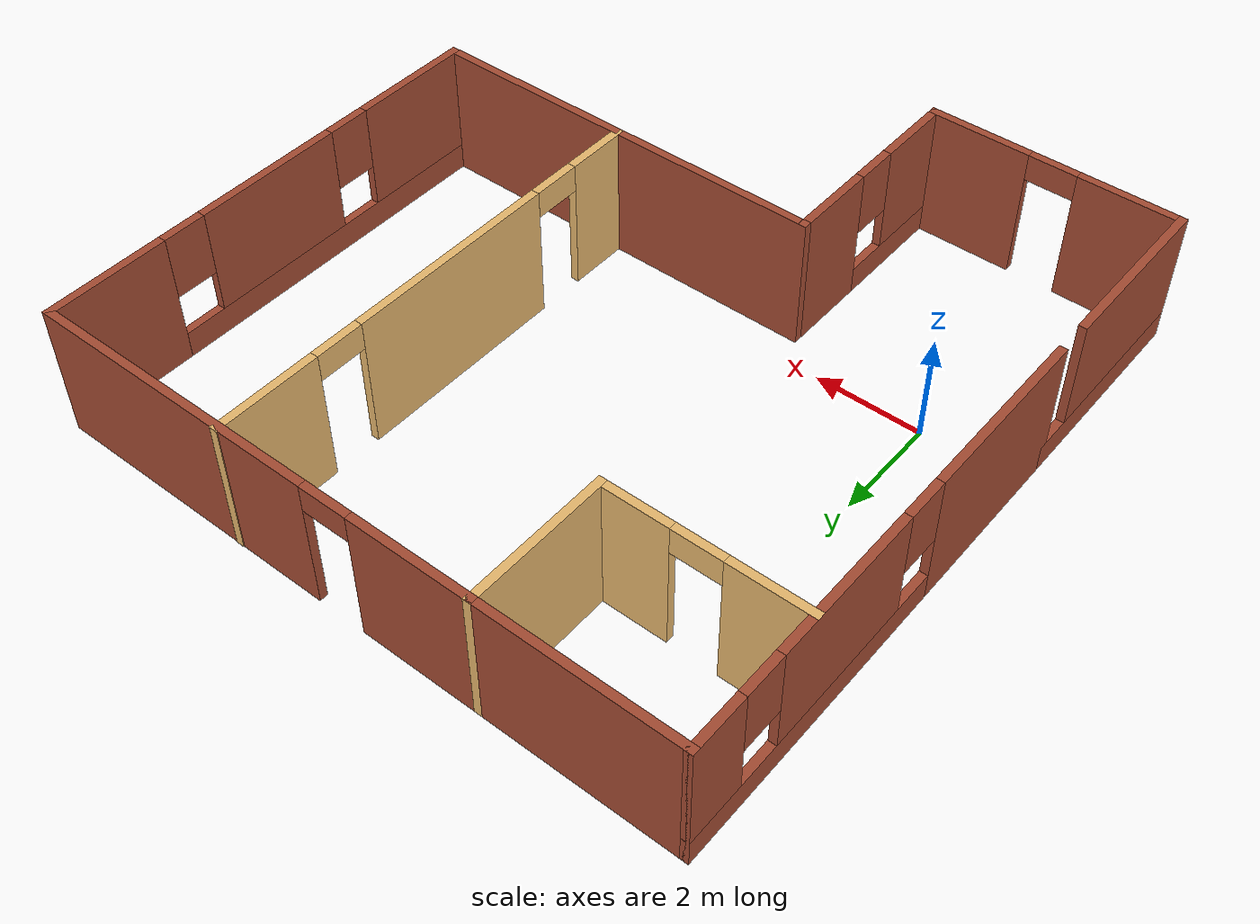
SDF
<?xml version='1.0'?>
<sdf version='1.7'>
  <model name='building'>
    <pose>4.337 1.96728 0 0 -0 0</pose>
    <link name='Wall_0'>
      <pose>-6.1 1.91872 0 0 -0 1.5708</pose>
      <visual name='Wall_0_Visual_0'>
        <pose>-2.80766 0 1.25 0 -0 0</pose>
        <geometry>
          <box>
            <size>3.38468 0.15 2.5</size>
          </box>
        </geometry>
        <material>
          <script>
            <uri>file://media/materials/scripts/gazebo.material</uri>
            <name>Gazebo/Bricks</name>
          </script>
          <ambient>1 1 1 1</ambient>
        </material>
        <meta>
          <layer>0</layer>
        </meta>
      </visual>
      <collision name='Wall_0_Collision_0'>
        <geometry>
          <box>
            <size>3.38468 0.15 2.5</size>
          </box>
        </geometry>
        <pose>-2.80766 0 1.25 0 -0 0</pose>
      </collision>
      <visual name='Wall_0_Visual_1'>
        <pose>1.69234 0 0.25 0 -0 0</pose>
        <geometry>
          <box>
            <size>5.61532 0.15 0.5</size>
          </box>
        </geometry>
        <material>
          <script>
            <uri>file://media/materials/scripts/gazebo.material</uri>
            <name>Gazebo/Bricks</name>
          </script>
          <ambient>1 1 1 1</ambient>
        </material>
        <meta>
          <layer>0</layer>
        </meta>
      </visual>
      <collision name='Wall_0_Collision_1'>
        <geometry>
          <box>
            <size>5.61532 0.15 0.5</size>
          </box>
        </geometry>
        <pose>1.69234 0 0.25 0 -0 0</pose>
      </collision>
      <visual name='Wall_0_Visual_2'>
        <pose>1.14475 0 1.5 0 -0 0</pose>
        <geometry>
          <box>
            <size>2.92014 0.15 2</size>
          </box>
        </geometry>
        <material>
          <script>
            <uri>file://media/materials/scripts/gazebo.material</uri>
            <name>Gazebo/Bricks</name>
          </script>
          <ambient>1 1 1 1</ambient>
        </material>
        <meta>
          <layer>0</layer>
        </meta>
      </visual>
      <collision name='Wall_0_Collision_2'>
        <geometry>
          <box>
            <size>2.92014 0.15 2</size>
          </box>
        </geometry>
        <pose>1.14475 0 1.5 0 -0 0</pose>
      </collision>
      <visual name='Wall_0_Visual_3'>
        <pose>3.95241 0 1.5 0 -0 0</pose>
        <geometry>
          <box>
            <size>1.09518 0.15 2</size>
          </box>
        </geometry>
        <material>
          <script>
            <uri>file://media/materials/scripts/gazebo.material</uri>
            <name>Gazebo/Bricks</name>
          </script>
          <ambient>1 1 1 1</ambient>
        </material>
        <meta>
          <layer>0</layer>
        </meta>
      </visual>
      <collision name='Wall_0_Collision_3'>
        <geometry>
          <box>
            <size>1.09518 0.15 2</size>
          </box>
        </geometry>
        <pose>3.95241 0 1.5 0 -0 0</pose>
      </collision>
      <visual name='Wall_0_Visual_4'>
        <pose>-0.71532 0 1.9 0 -0 0</pose>
        <geometry>
          <box>
            <size>0.8 0.15 1.2</size>
          </box>
        </geometry>
        <material>
          <script>
            <uri>file://media/materials/scripts/gazebo.material</uri>
            <name>Gazebo/Bricks</name>
          </script>
          <ambient>1 1 1 1</ambient>
        </material>
        <meta>
          <layer>0</layer>
        </meta>
      </visual>
      <collision name='Wall_0_Collision_4'>
        <geometry>
          <box>
            <size>0.8 0.15 1.2</size>
          </box>
        </geometry>
        <pose>-0.71532 0 1.9 0 -0 0</pose>
      </collision>
      <visual name='Wall_0_Visual_5'>
        <pose>3.00482 0 1.9 0 -0 0</pose>
        <geometry>
          <box>
            <size>0.8 0.15 1.2</size>
          </box>
        </geometry>
        <material>
          <script>
            <uri>file://media/materials/scripts/gazebo.material</uri>
            <name>Gazebo/Bricks</name>
          </script>
          <ambient>1 1 1 1</ambient>
        </material>
        <meta>
          <layer>0</layer>
        </meta>
      </visual>
      <collision name='Wall_0_Collision_5'>
        <geometry>
          <box>
            <size>0.8 0.15 1.2</size>
          </box>
        </geometry>
        <pose>3.00482 0 1.9 0 -0 0</pose>
      </collision>
    </link>
    <link name='Wall_1'>
      <collision name='Wall_1_Collision'>
        <geometry>
          <box>
            <size>3.75 0.15 2.5</size>
          </box>
        </geometry>
        <pose>0 0 1.25 0 -0 0</pose>
      </collision>
      <visual name='Wall_1_Visual'>
        <pose>0 0 1.25 0 -0 0</pose>
        <geometry>
          <box>
            <size>3.75 0.15 2.5</size>
          </box>
        </geometry>
        <material>
          <script>
            <uri>file://media/materials/scripts/gazebo.material</uri>
            <name>Gazebo/Bricks</name>
          </script>
          <ambient>1 1 1 1</ambient>
        </material>
        <meta>
          <layer>0</layer>
        </meta>
      </visual>
      <pose>-4.3 6.34372 0 0 -0 0</pose>
    </link>
    <link name='Wall_16'>
      <pose>-6.1 -4.43128 0 0 -0 -1.5708</pose>
      <visual name='Wall_16_Visual_0'>
        <pose>0 0 0.25 0 -0 0</pose>
        <geometry>
          <box>
            <size>4 0.15 0.5</size>
          </box>
        </geometry>
        <material>
          <script>
            <uri>file://media/materials/scripts/gazebo.material</uri>
            <name>Gazebo/Bricks</name>
          </script>
          <ambient>1 1 1 1</ambient>
        </material>
        <meta>
          <layer>0</layer>
        </meta>
      </visual>
      <collision name='Wall_16_Collision_0'>
        <geometry>
          <box>
            <size>4 0.15 0.5</size>
          </box>
        </geometry>
        <pose>0 0 0.25 0 -0 0</pose>
      </collision>
      <visual name='Wall_16_Visual_1'>
        <pose>0.35573 0 1.5 0 -0 0</pose>
        <geometry>
          <box>
            <size>3.28854 0.15 2</size>
          </box>
        </geometry>
        <material>
          <script>
            <uri>file://media/materials/scripts/gazebo.material</uri>
            <name>Gazebo/Bricks</name>
          </script>
          <ambient>1 1 1 1</ambient>
        </material>
        <meta>
          <layer>0</layer>
        </meta>
      </visual>
      <collision name='Wall_16_Collision_1'>
        <geometry>
          <box>
            <size>3.28854 0.15 2</size>
          </box>
        </geometry>
        <pose>0.35573 0 1.5 0 -0 0</pose>
      </collision>
    </link>
    <link name='Wall_17'>
      <pose>-3.8 -6.35628 0 0 -0 0</pose>
      <visual name='Wall_17_Visual_0'>
        <pose>-1.42127 0 1.25 0 -0 0</pose>
        <geometry>
          <box>
            <size>1.90746 0.15 2.5</size>
          </box>
        </geometry>
        <material>
          <script>
            <uri>file://media/materials/scripts/gazebo.material</uri>
            <name>Gazebo/Bricks</name>
          </script>
          <ambient>1 1 1 1</ambient>
        </material>
        <meta>
          <layer>0</layer>
        </meta>
      </visual>
      <collision name='Wall_17_Collision_0'>
        <geometry>
          <box>
            <size>1.90746 0.15 2.5</size>
          </box>
        </geometry>
        <pose>-1.42127 0 1.25 0 -0 0</pose>
      </collision>
      <visual name='Wall_17_Visual_1'>
        <pose>1.40373 0 1.25 0 -0 0</pose>
        <geometry>
          <box>
            <size>1.94254 0.15 2.5</size>
          </box>
        </geometry>
        <material>
          <script>
            <uri>file://media/materials/scripts/gazebo.material</uri>
            <name>Gazebo/Bricks</name>
          </script>
          <ambient>1 1 1 1</ambient>
        </material>
        <meta>
          <layer>0</layer>
        </meta>
      </visual>
      <collision name='Wall_17_Collision_1'>
        <geometry>
          <box>
            <size>1.94254 0.15 2.5</size>
          </box>
        </geometry>
        <pose>1.40373 0 1.25 0 -0 0</pose>
      </collision>
      <visual name='Wall_17_Visual_2'>
        <pose>-0.017539 0 2.25 0 -0 0</pose>
        <geometry>
          <box>
            <size>0.9 0.15 0.5</size>
          </box>
        </geometry>
        <material>
          <script>
            <uri>file://media/materials/scripts/gazebo.material</uri>
            <name>Gazebo/Bricks</name>
          </script>
          <ambient>1 1 1 1</ambient>
        </material>
        <meta>
          <layer>0</layer>
        </meta>
      </visual>
      <collision name='Wall_17_Collision_2'>
        <geometry>
          <box>
            <size>0.9 0.15 0.5</size>
          </box>
        </geometry>
        <pose>-0.017539 0 2.25 0 -0 0</pose>
      </collision>
    </link>
    <link name='Wall_19'>
      <pose>2.3336 1.93128 0 0 -0 -1.5708</pose>
      <visual name='Wall_19_Visual_0'>
        <pose>-3.52507 0 1.25 0 -0 0</pose>
        <geometry>
          <box>
            <size>1.94986 0.15 2.5</size>
          </box>
        </geometry>
        <material>
          <script>
            <uri>file://media/materials/scripts/gazebo.material</uri>
            <name>Gazebo/Grey</name>
          </script>
          <ambient>0.913725 0.72549 0.431373 1</ambient>
        </material>
        <meta>
          <layer>0</layer>
        </meta>
      </visual>
      <collision name='Wall_19_Collision_0'>
        <geometry>
          <box>
            <size>1.94986 0.15 2.5</size>
          </box>
        </geometry>
        <pose>-3.52507 0 1.25 0 -0 0</pose>
      </collision>
      <visual name='Wall_19_Visual_1'>
        <pose>0.347076 0 1.25 0 -0 0</pose>
        <geometry>
          <box>
            <size>3.99444 0.15 2.5</size>
          </box>
        </geometry>
        <material>
          <script>
            <uri>file://media/materials/scripts/gazebo.material</uri>
            <name>Gazebo/Grey</name>
          </script>
          <ambient>0.913725 0.72549 0.431373 1</ambient>
        </material>
        <meta>
          <layer>0</layer>
        </meta>
      </visual>
      <collision name='Wall_19_Collision_1'>
        <geometry>
          <box>
            <size>3.99444 0.15 2.5</size>
          </box>
        </geometry>
        <pose>0.347076 0 1.25 0 -0 0</pose>
      </collision>
      <visual name='Wall_19_Visual_2'>
        <pose>3.87215 0 1.25 0 -0 0</pose>
        <geometry>
          <box>
            <size>1.25571 0.15 2.5</size>
          </box>
        </geometry>
        <material>
          <script>
            <uri>file://media/materials/scripts/gazebo.material</uri>
            <name>Gazebo/Grey</name>
          </script>
          <ambient>0.913725 0.72549 0.431373 1</ambient>
        </material>
        <meta>
          <layer>0</layer>
        </meta>
      </visual>
      <collision name='Wall_19_Collision_2'>
        <geometry>
          <box>
            <size>1.25571 0.15 2.5</size>
          </box>
        </geometry>
        <pose>3.87215 0 1.25 0 -0 0</pose>
      </collision>
      <visual name='Wall_19_Visual_3'>
        <pose>-2.10014 0 2.25 0 -0 0</pose>
        <geometry>
          <box>
            <size>0.9 0.15 0.5</size>
          </box>
        </geometry>
        <material>
          <script>
            <uri>file://media/materials/scripts/gazebo.material</uri>
            <name>Gazebo/Grey</name>
          </script>
          <ambient>0.913725 0.72549 0.431373 1</ambient>
        </material>
        <meta>
          <layer>0</layer>
        </meta>
      </visual>
      <collision name='Wall_19_Collision_3'>
        <geometry>
          <box>
            <size>0.9 0.15 0.5</size>
          </box>
        </geometry>
        <pose>-2.10014 0 2.25 0 -0 0</pose>
      </collision>
      <visual name='Wall_19_Visual_4'>
        <pose>2.79429 0 2.25 0 -0 0</pose>
        <geometry>
          <box>
            <size>0.9 0.15 0.5</size>
          </box>
        </geometry>
        <material>
          <script>
            <uri>file://media/materials/scripts/gazebo.material</uri>
            <name>Gazebo/Grey</name>
          </script>
          <ambient>0.913725 0.72549 0.431373 1</ambient>
        </material>
        <meta>
          <layer>0</layer>
        </meta>
      </visual>
      <collision name='Wall_19_Collision_4'>
        <geometry>
          <box>
            <size>0.9 0.15 0.5</size>
          </box>
        </geometry>
        <pose>2.79429 0 2.25 0 -0 0</pose>
      </collision>
    </link>
    <link name='Wall_2'>
      <collision name='Wall_2_Collision'>
        <geometry>
          <box>
            <size>2.75 0.15 2.5</size>
          </box>
        </geometry>
        <pose>0 0 1.25 0 -0 0</pose>
      </collision>
      <visual name='Wall_2_Visual'>
        <pose>0 0 1.25 0 -0 0</pose>
        <geometry>
          <box>
            <size>2.75 0.15 2.5</size>
          </box>
        </geometry>
        <material>
          <script>
            <uri>file://media/materials/scripts/gazebo.material</uri>
            <name>Gazebo/Grey</name>
          </script>
          <ambient>0.913725 0.72549 0.431373 1</ambient>
        </material>
        <meta>
          <layer>0</layer>
        </meta>
      </visual>
      <pose>-2.5 5.04372 0 0 -0 -1.5708</pose>
    </link>
    <link name='Wall_3'>
      <pose>-4.3 3.74372 0 0 -0 3.14159</pose>
      <visual name='Wall_3_Visual_0'>
        <pose>-1.20615 0 1.25 0 -0 0</pose>
        <geometry>
          <box>
            <size>1.33771 0.15 2.5</size>
          </box>
        </geometry>
        <material>
          <script>
            <uri>file://media/materials/scripts/gazebo.material</uri>
            <name>Gazebo/Grey</name>
          </script>
          <ambient>0.913725 0.72549 0.431373 1</ambient>
        </material>
        <meta>
          <layer>0</layer>
        </meta>
      </visual>
      <collision name='Wall_3_Collision_0'>
        <geometry>
          <box>
            <size>1.33771 0.15 2.5</size>
          </box>
        </geometry>
        <pose>-1.20615 0 1.25 0 -0 0</pose>
      </collision>
      <visual name='Wall_3_Visual_1'>
        <pose>1.11885 0 1.25 0 -0 0</pose>
        <geometry>
          <box>
            <size>1.51229 0.15 2.5</size>
          </box>
        </geometry>
        <material>
          <script>
            <uri>file://media/materials/scripts/gazebo.material</uri>
            <name>Gazebo/Grey</name>
          </script>
          <ambient>0.913725 0.72549 0.431373 1</ambient>
        </material>
        <meta>
          <layer>0</layer>
        </meta>
      </visual>
      <collision name='Wall_3_Collision_1'>
        <geometry>
          <box>
            <size>1.51229 0.15 2.5</size>
          </box>
        </geometry>
        <pose>1.11885 0 1.25 0 -0 0</pose>
      </collision>
      <visual name='Wall_3_Visual_2'>
        <pose>-0.087293 0 2.25 0 -0 0</pose>
        <geometry>
          <box>
            <size>0.9 0.15 0.5</size>
          </box>
        </geometry>
        <material>
          <script>
            <uri>file://media/materials/scripts/gazebo.material</uri>
            <name>Gazebo/Grey</name>
          </script>
          <ambient>0.913725 0.72549 0.431373 1</ambient>
        </material>
        <meta>
          <layer>0</layer>
        </meta>
      </visual>
      <collision name='Wall_3_Collision_2'>
        <geometry>
          <box>
            <size>0.9 0.15 0.5</size>
          </box>
        </geometry>
        <pose>-0.087293 0 2.25 0 -0 0</pose>
      </collision>
    </link>
    <link name='Wall_5'>
      <pose>1.8 6.34372 0 0 -0 0</pose>
      <visual name='Wall_5_Visual_0'>
        <pose>-3.22478 0 1.25 0 -0 0</pose>
        <geometry>
          <box>
            <size>2.30044 0.15 2.5</size>
          </box>
        </geometry>
        <material>
          <script>
            <uri>file://media/materials/scripts/gazebo.material</uri>
            <name>Gazebo/Bricks</name>
          </script>
          <ambient>1 1 1 1</ambient>
        </material>
        <meta>
          <layer>0</layer>
        </meta>
      </visual>
      <collision name='Wall_5_Collision_0'>
        <geometry>
          <box>
            <size>2.30044 0.15 2.5</size>
          </box>
        </geometry>
        <pose>-3.22478 0 1.25 0 -0 0</pose>
      </collision>
      <visual name='Wall_5_Visual_1'>
        <pose>1.60022 0 1.25 0 -0 0</pose>
        <geometry>
          <box>
            <size>5.54956 0.15 2.5</size>
          </box>
        </geometry>
        <material>
          <script>
            <uri>file://media/materials/scripts/gazebo.material</uri>
            <name>Gazebo/Bricks</name>
          </script>
          <ambient>1 1 1 1</ambient>
        </material>
        <meta>
          <layer>0</layer>
        </meta>
      </visual>
      <collision name='Wall_5_Collision_1'>
        <geometry>
          <box>
            <size>5.54956 0.15 2.5</size>
          </box>
        </geometry>
        <pose>1.60022 0 1.25 0 -0 0</pose>
      </collision>
      <visual name='Wall_5_Visual_2'>
        <pose>-1.62456 0 2.25 0 -0 0</pose>
        <geometry>
          <box>
            <size>0.9 0.15 0.5</size>
          </box>
        </geometry>
        <material>
          <script>
            <uri>file://media/materials/scripts/gazebo.material</uri>
            <name>Gazebo/Bricks</name>
          </script>
          <ambient>1 1 1 1</ambient>
        </material>
        <meta>
          <layer>0</layer>
        </meta>
      </visual>
      <collision name='Wall_5_Collision_2'>
        <geometry>
          <box>
            <size>0.9 0.15 0.5</size>
          </box>
        </geometry>
        <pose>-1.62456 0 2.25 0 -0 0</pose>
      </collision>
    </link>
    <link name='Wall_6'>
      <pose>6.1 1.91872 0 0 -0 -1.5708</pose>
      <visual name='Wall_6_Visual_0'>
        <pose>-3.37414 0 1.25 0 -0 0</pose>
        <geometry>
          <box>
            <size>2.25171 0.15 2.5</size>
          </box>
        </geometry>
        <material>
          <script>
            <uri>file://media/materials/scripts/gazebo.material</uri>
            <name>Gazebo/Bricks</name>
          </script>
          <ambient>1 1 1 1</ambient>
        </material>
        <meta>
          <layer>0</layer>
        </meta>
      </visual>
      <collision name='Wall_6_Collision_0'>
        <geometry>
          <box>
            <size>2.25171 0.15 2.5</size>
          </box>
        </geometry>
        <pose>-3.37414 0 1.25 0 -0 0</pose>
      </collision>
      <visual name='Wall_6_Visual_1'>
        <pose>1.12586 0 0.25 0 -0 0</pose>
        <geometry>
          <box>
            <size>6.74829 0.15 0.5</size>
          </box>
        </geometry>
        <material>
          <script>
            <uri>file://media/materials/scripts/gazebo.material</uri>
            <name>Gazebo/Bricks</name>
          </script>
          <ambient>1 1 1 1</ambient>
        </material>
        <meta>
          <layer>0</layer>
        </meta>
      </visual>
      <collision name='Wall_6_Collision_1'>
        <geometry>
          <box>
            <size>6.74829 0.15 0.5</size>
          </box>
        </geometry>
        <pose>1.12586 0 0.25 0 -0 0</pose>
      </collision>
      <visual name='Wall_6_Visual_2'>
        <pose>-0.044099 0 1.5 0 -0 0</pose>
        <geometry>
          <box>
            <size>2.80837 0.15 2</size>
          </box>
        </geometry>
        <material>
          <script>
            <uri>file://media/materials/scripts/gazebo.material</uri>
            <name>Gazebo/Bricks</name>
          </script>
          <ambient>1 1 1 1</ambient>
        </material>
        <meta>
          <layer>0</layer>
        </meta>
      </visual>
      <collision name='Wall_6_Collision_2'>
        <geometry>
          <box>
            <size>2.80837 0.15 2</size>
          </box>
        </geometry>
        <pose>-0.044099 0 1.5 0 -0 0</pose>
      </collision>
      <visual name='Wall_6_Visual_3'>
        <pose>3.33004 0 1.5 0 -0 0</pose>
        <geometry>
          <box>
            <size>2.33991 0.15 2</size>
          </box>
        </geometry>
        <material>
          <script>
            <uri>file://media/materials/scripts/gazebo.material</uri>
            <name>Gazebo/Bricks</name>
          </script>
          <ambient>1 1 1 1</ambient>
        </material>
        <meta>
          <layer>0</layer>
        </meta>
      </visual>
      <collision name='Wall_6_Collision_3'>
        <geometry>
          <box>
            <size>2.33991 0.15 2</size>
          </box>
        </geometry>
        <pose>3.33004 0 1.5 0 -0 0</pose>
      </collision>
      <visual name='Wall_6_Visual_4'>
        <pose>-1.84829 0 1.9 0 -0 0</pose>
        <geometry>
          <box>
            <size>0.8 0.15 1.2</size>
          </box>
        </geometry>
        <material>
          <script>
            <uri>file://media/materials/scripts/gazebo.material</uri>
            <name>Gazebo/Bricks</name>
          </script>
          <ambient>1 1 1 1</ambient>
        </material>
        <meta>
          <layer>0</layer>
        </meta>
      </visual>
      <collision name='Wall_6_Collision_4'>
        <geometry>
          <box>
            <size>0.8 0.15 1.2</size>
          </box>
        </geometry>
        <pose>-1.84829 0 1.9 0 -0 0</pose>
      </collision>
      <visual name='Wall_6_Visual_5'>
        <pose>1.76009 0 1.9 0 -0 0</pose>
        <geometry>
          <box>
            <size>0.8 0.15 1.2</size>
          </box>
        </geometry>
        <material>
          <script>
            <uri>file://media/materials/scripts/gazebo.material</uri>
            <name>Gazebo/Bricks</name>
          </script>
          <ambient>1 1 1 1</ambient>
        </material>
        <meta>
          <layer>0</layer>
        </meta>
      </visual>
      <collision name='Wall_6_Collision_5'>
        <geometry>
          <box>
            <size>0.8 0.15 1.2</size>
          </box>
        </geometry>
        <pose>1.76009 0 1.9 0 -0 0</pose>
      </collision>
    </link>
    <link name='Wall_7'>
      <collision name='Wall_7_Collision'>
        <geometry>
          <box>
            <size>7.75 0.15 2.5</size>
          </box>
        </geometry>
        <pose>0 0 1.25 0 -0 0</pose>
      </collision>
      <visual name='Wall_7_Visual'>
        <pose>0 0 1.25 0 -0 0</pose>
        <geometry>
          <box>
            <size>7.75 0.15 2.5</size>
          </box>
        </geometry>
        <material>
          <script>
            <uri>file://media/materials/scripts/gazebo.material</uri>
            <name>Gazebo/Bricks</name>
          </script>
          <ambient>1 1 1 1</ambient>
        </material>
        <meta>
          <layer>0</layer>
        </meta>
      </visual>
      <pose>2.3 -2.50628 0 0 -0 3.14159</pose>
    </link>
    <link name='Wall_8'>
      <pose>-1.5 -4.43128 0 0 -0 -1.5708</pose>
      <visual name='Wall_8_Visual_0'>
        <pose>-1.17245 0 1.25 0 -0 0</pose>
        <geometry>
          <box>
            <size>1.6551 0.15 2.5</size>
          </box>
        </geometry>
        <material>
          <script>
            <uri>file://media/materials/scripts/gazebo.material</uri>
            <name>Gazebo/Bricks</name>
          </script>
          <ambient>1 1 1 1</ambient>
        </material>
        <meta>
          <layer>0</layer>
        </meta>
      </visual>
      <collision name='Wall_8_Collision_0'>
        <geometry>
          <box>
            <size>1.6551 0.15 2.5</size>
          </box>
        </geometry>
        <pose>-1.17245 0 1.25 0 -0 0</pose>
      </collision>
      <visual name='Wall_8_Visual_1'>
        <pose>0.827551 0 0.25 0 -0 0</pose>
        <geometry>
          <box>
            <size>2.3449 0.15 0.5</size>
          </box>
        </geometry>
        <material>
          <script>
            <uri>file://media/materials/scripts/gazebo.material</uri>
            <name>Gazebo/Bricks</name>
          </script>
          <ambient>1 1 1 1</ambient>
        </material>
        <meta>
          <layer>0</layer>
        </meta>
      </visual>
      <collision name='Wall_8_Collision_1'>
        <geometry>
          <box>
            <size>2.3449 0.15 0.5</size>
          </box>
        </geometry>
        <pose>0.827551 0 0.25 0 -0 0</pose>
      </collision>
      <visual name='Wall_8_Visual_2'>
        <pose>1.22755 0 1.5 0 -0 0</pose>
        <geometry>
          <box>
            <size>1.5449 0.15 2</size>
          </box>
        </geometry>
        <material>
          <script>
            <uri>file://media/materials/scripts/gazebo.material</uri>
            <name>Gazebo/Bricks</name>
          </script>
          <ambient>1 1 1 1</ambient>
        </material>
        <meta>
          <layer>0</layer>
        </meta>
      </visual>
      <collision name='Wall_8_Collision_2'>
        <geometry>
          <box>
            <size>1.5449 0.15 2</size>
          </box>
        </geometry>
        <pose>1.22755 0 1.5 0 -0 0</pose>
      </collision>
      <visual name='Wall_8_Visual_3'>
        <pose>0.055102 0 1.9 0 -0 0</pose>
        <geometry>
          <box>
            <size>0.8 0.15 1.2</size>
          </box>
        </geometry>
        <material>
          <script>
            <uri>file://media/materials/scripts/gazebo.material</uri>
            <name>Gazebo/Bricks</name>
          </script>
          <ambient>1 1 1 1</ambient>
        </material>
        <meta>
          <layer>0</layer>
        </meta>
      </visual>
      <collision name='Wall_8_Collision_3'>
        <geometry>
          <box>
            <size>0.8 0.15 1.2</size>
          </box>
        </geometry>
        <pose>0.055102 0 1.9 0 -0 0</pose>
      </collision>
    </link>
    <static>1</static>
  </model>
</sdf>
